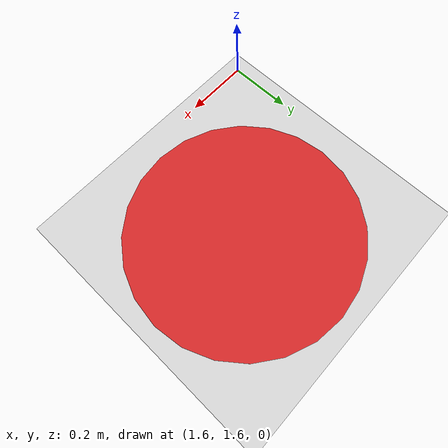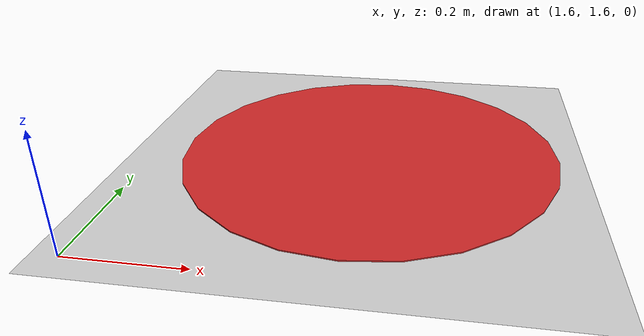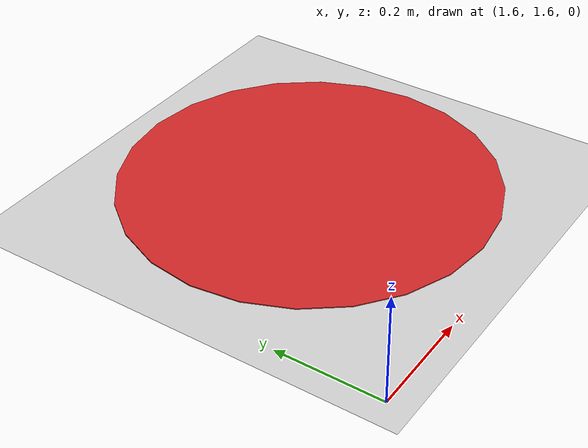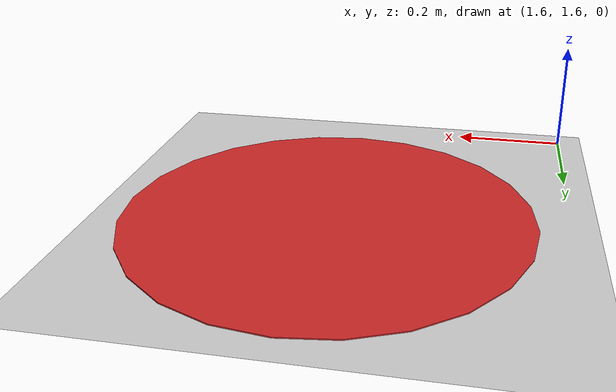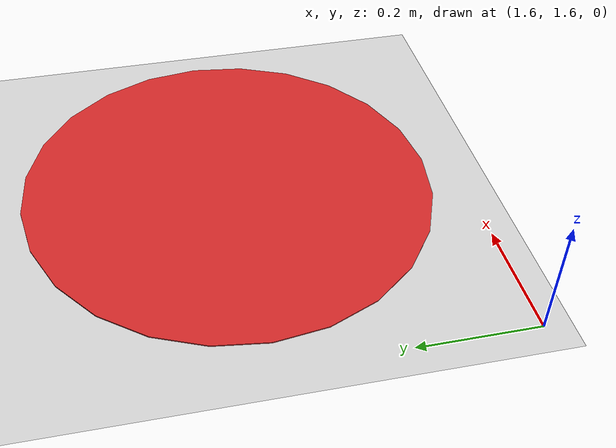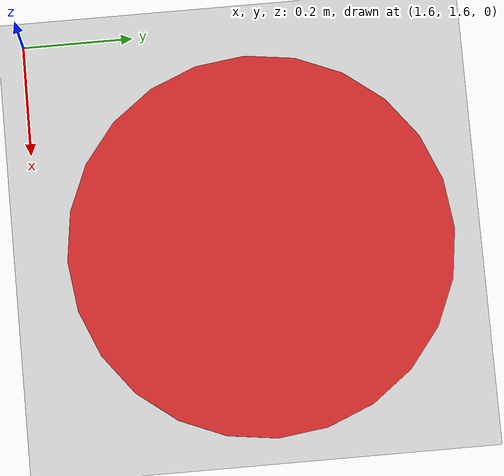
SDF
<?xml version="1.0" ?>
<sdf version="1.6">
  <world name="colored_floor">
    <!-- 光源 -->
    <include>
      <uri>model://sun</uri>
    </include>

    <!-- 地面モデル（色付き） -->
    <model name="ground_plane">
      <static>true</static>
      <link name="link">
        <collision name="collision">
          <geometry>
            <plane>
              <normal>0 0 1</normal>
              <size>100 100</size>
            </plane>
          </geometry>
          <surface>
            <friction>
              <ode>
                <mu>100</mu>
                <mu2>50</mu2>
              </ode>
            </friction>
          </surface>
        </collision>
        <visual name="visual">
          <cast_shadows>false</cast_shadows>
          <geometry>
            <plane>
              <normal>0 0 1</normal>
              <size>100 100</size>
            </plane>
          </geometry>
          <material>
            <script>
              <uri>file://media/materials/scripts/gazebo.material</uri>
              <name>Gazebo/Grid</name>
            </script>
            <ambient>0.8 0.8 0.8 1</ambient>
            <diffuse>0.8 0.8 0.8 1</diffuse>
            <specular>0.8 0.8 0.8 1</specular>
          </material>
        </visual>
      </link>
    </model>

    <!-- 目標エリアの床 (赤い円) -->
    <model name="goal_area">
      <static>true</static>
      <pose>2.0 2.0 0.001 0 0 0</pose>
      <link name="link">
        <visual name="visual">
          <cast_shadows>false</cast_shadows>
          <geometry>
            <cylinder>
              <radius>0.35</radius>
              <length>0.002</length>
            </cylinder>
          </geometry>
          <material>
            <script>
              <uri>file://media/materials/scripts/gazebo.material</uri>
              <name>Gazebo/Red</name>
            </script>
            <ambient>1.0 0.0 0.0 0.8</ambient>
            <diffuse>1.0 0.0 0.0 0.8</diffuse>
          </material>
        </visual>
      </link>
    </model>

    <!-- 物理エンジンの設定 -->
    <physics type="ode">
      <real_time_update_rate>1000.0</real_time_update_rate>
      <max_step_size>0.001</max_step_size>
      <real_time_factor>1</real_time_factor>
      <ode>
        <solver>
          <type>quick</type>
          <iters>150</iters>
          <precon_iters>0</precon_iters>
          <sor>1.400000</sor>
          <use_dynamic_moi_rescaling>1</use_dynamic_moi_rescaling>
        </solver>
        <constraints>
          <cfm>0.00001</cfm>
          <erp>0.2</erp>
          <contact_max_correcting_vel>2000.000000</contact_max_correcting_vel>
          <contact_surface_layer>0.01000</contact_surface_layer>
        </constraints>
      </ode>
    </physics>

    <!-- GUI設定 -->
    <gui fullscreen='0'>
      <camera name='user_camera'>
        <pose>4.0 4.0 2.0 0 0.5 -2.3</pose>
        <view_controller>orbit</view_controller>
      </camera>
    </gui>
  </world>
</sdf>
